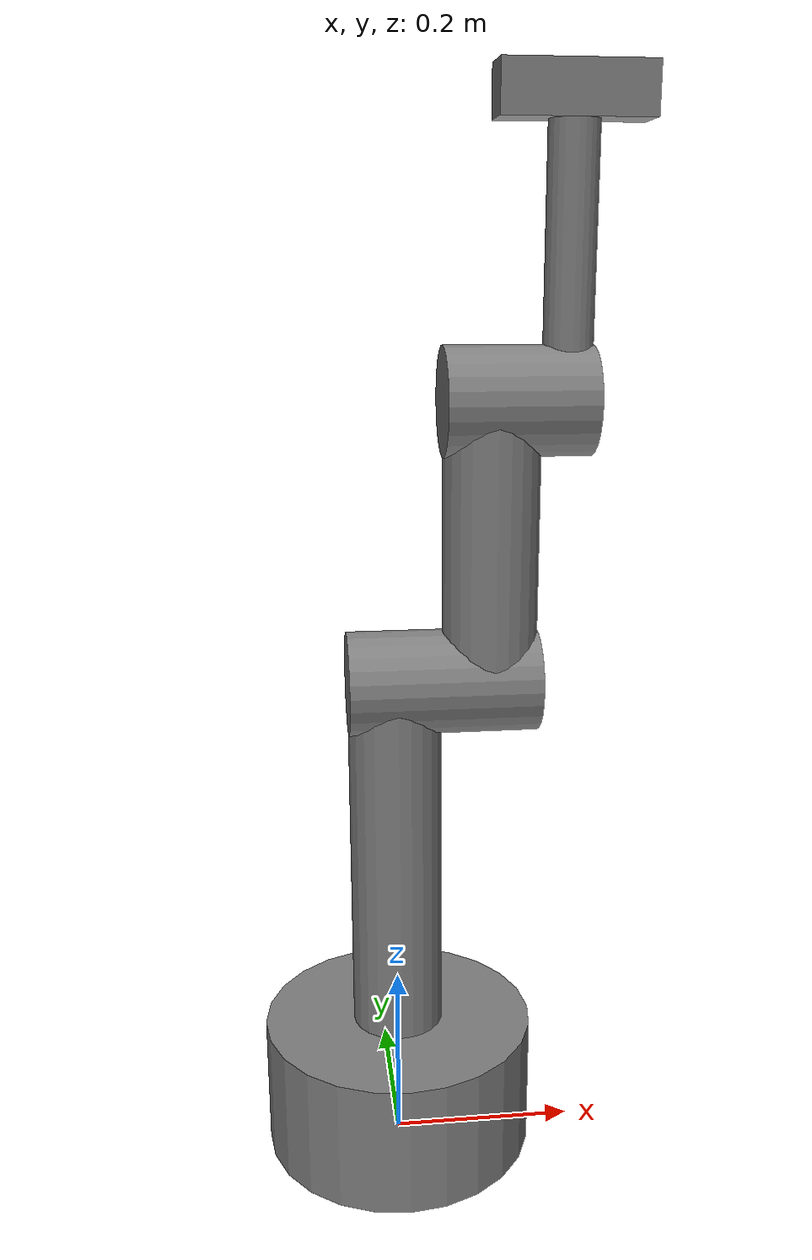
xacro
<?xml version="1.0"?>
<robot name="3dof" xmlns:xacro="http://ros.org/wiki/xacro">

    <!-- Define properties -->
    <xacro:property name="M_PI" value="3.14159"/>
    <xacro:property name="base_mass" value="20"/>
    <xacro:property name="base_radius" value="0.15"/>
    <xacro:property name="base_length" value="0.15"/>
    <xacro:property name="link1_mass" value="5"/>
    <xacro:property name="link1_radius" value="0.05"/>
    <xacro:property name="link1_length" value="0.4"/>

    <xacro:property name="link2_mass" value="2"/>
    <xacro:property name="link2_radius" value="0.05"/>
    <xacro:property name="link2_length" value="0.3"/>

    <xacro:property name="link3_mass" value="3"/>
    <xacro:property name="link3_radius" value="0.025"/>
    <xacro:property name="link3_length" value="0.3"/>

    <xacro:property name="link4_mass" value="1"/>
    <xacro:property name="link4_radius" value="0.025"/>
    <xacro:property name="link4_length" value="0.15"/>

    <!-- Define macro for inertial block -->
    <xacro:macro name="inertial_block" params="mass length radius">
        <inertial>
            <origin xyz="0 0 ${length/2}" rpy="0 0 0"/>
            <mass value="${mass}"/>
            <inertia
                ixx="${mass / 12.0 * (2*radius*2*radius + length*length)}" ixy="0.0" ixz="0.0"
                iyy="${mass / 12.0 * (length*length + 2*radius*2*radius)}" iyz="0.0"
                izz="${mass / 12.0 * (2*radius*2*radius + 2*radius*2*radius)}" />
        </inertial>
    </xacro:macro>

    <!-- Define macro for visual block -->
    <xacro:macro name="visual_block" params="radius length color">
        <visual>
            <origin xyz="0 0 ${length/2}" rpy="0 0 0"/>
            <geometry>
                <cylinder radius="${radius}" length="${length}"/>
            </geometry>
            <material name="grey">
                <color rgba="${color}"/>
            </material>
        </visual>
    </xacro:macro>

    <!-- Define macro for collision block -->
    <xacro:macro name="collision_block" params="radius length">
        <collision>
            <origin xyz="0 0 ${length/2}" rpy="0 0 0"/>
            <geometry>
                <cylinder radius="${radius}" length="${length}"/>
            </geometry>
        </collision>
    </xacro:macro>

    <!-- Mundo (World) -->
    <link name="world"/>
    <joint name="world_joint" type="fixed">
        <origin rpy="0.0 0.0 0.0" xyz="0.0 0.0 0.0"/>
        <parent link="world"/>
        <child link="base_link"/>
    </joint>

    <!-- Base Link -->
    <link name="base_link">
        <xacro:inertial_block mass="${base_mass}" length="${base_length}" radius="${base_radius}"/>
        <xacro:visual_block radius="${base_radius}" length="${base_length}" color="0.5 0.5 0.5 1"/>
        <xacro:collision_block radius="${base_radius}" length="${base_length}"/>
    </link>

    <joint name="joint_1" type="revolute">
        <origin xyz="0.0 0.0 ${base_length}" rpy="0.0 0.0 0.0" />
        <parent link="base_link"/>
        <child link="link_1"/>
        <axis xyz="0.0 0.0 1"/>
        <limit effort="300.0" lower="0.0" upper="6.28318" velocity="1.0"/>
    </joint>

    <!-- Link 1 -->
    <link name="link_1">
        <xacro:inertial_block mass="${link1_mass}" length="${link1_length}" radius="${link1_radius}"/>
        <xacro:visual_block radius="${link1_radius}" length="${link1_length}" color="0.5 0.5 0.5 1"/>
        <xacro:collision_block radius="${link1_radius}" length="${link1_length}"/>
    </link>

    <!-- Codo -->
    <link name="link_1_endlink">
        <xacro:inertial_block mass="${link1_mass/3.0}" length="${2*link1_radius+2*link2_radius}" radius="${link1_radius}"/>
        <visual>
            <origin xyz="0.0 0.0 ${(2*link1_radius+2*link2_radius)/2.0}" rpy="0.0 0.0 0.0"/>
            <geometry>
                <cylinder length="${(2*link1_radius+2*link2_radius)}" radius="${link1_radius*1.1}"/>
            </geometry>
            <material name="grey">
                <color rgba="0.5 0.5 0.5 1"/>
            </material>
        </visual>
        <collision>
            <origin xyz="0.0 0.0 ${(2*link1_radius+2*link2_radius)/2.0}" rpy="0.0 0.0 0.0"/>
            <geometry>
                <cylinder length="${(2*link1_radius+2*link2_radius)}" radius="${link1_radius*1.1}"/>
            </geometry>
        </collision>
    </link>

    <!-- Articulacion codo -->
    <joint name="link_1_endjoint" type="fixed">
        <origin xyz="${-link1_radius} 0.0 ${link1_length}" rpy="0.0 ${M_PI/2.0} 0.0"/>
        <parent link="link_1"/>
        <child link="link_1_endlink"/>
    </joint>

    <joint name="joint_2" type="revolute">
        <origin xyz="${link1_radius + link2_radius} 0.0 ${link1_length}" rpy="0.0 0.0 0.0"/>
        <parent link="link_1"/>
        <child link="link_2"/>
        <axis xyz="1.0 0.0 0.0"/>
        <limit effort="300.0" lower="0.0" upper="${M_PI}" velocity="1.0"/>
    </joint>

    <!-- Link 2 -->
    <link name="link_2">
        <xacro:inertial_block mass="${link2_mass}" length="${link2_length}" radius="${link2_radius}"/>
        <xacro:visual_block radius="${link2_radius}" length="${link2_length}" color="0.5 0.5 0.5 1"/>
        <xacro:collision_block radius="${link2_radius}" length="${link2_length}"/>
    </link>

    <!-- Link 2 end link -->
    <link name="link_2_endlink">
        <xacro:inertial_block mass="${link3_mass/3.0}" length="${2*link2_radius+2*link3_radius}" radius="${link2_radius}"/>
        <visual>
            <origin xyz="0.0 0.0 ${(2*link2_radius+2*link3_radius)/2.0}" rpy="0.0 0.0 0.0"/>
            <geometry>
                <cylinder radius="${link2_radius*1.1}" length="${2*link2_radius+2*link3_radius}"/>
            </geometry>
            <material name="grey">
                <color rgba="0.5 0.5 0.5 1"/>
            </material>
        </visual>
        <collision>
            <origin xyz="0.0 0.0 ${(2*link2_radius+2*link3_radius)/2.0}" rpy="0.0 0.0 0.0"/>
            <geometry>
                <cylinder radius="${link2_radius*1.1}" length="${2*link2_radius+2*link3_radius}"/>
            </geometry>
        </collision>
    </link>

    <joint name="link_2_endjoint" type="fixed">
        <origin xyz="${-link2_radius} 0.0 ${link2_length - 0.01}" rpy="0.0 ${M_PI/2.0} 0.0"/>
        <parent link="link_2"/>
        <child link="link_2_endlink"/>
    </joint>

    <joint name="joint_3" type="revolute">
        <origin xyz="${link2_radius + link3_radius} 0.0 ${link2_length - link2_radius}" rpy="0.0 0.0 0.0"/>
        <parent link="link_2"/>
        <child link="link_3"/>
        <axis xyz="1.0 0.0 0.0"/>
        <limit lower="0.0" upper="${M_PI * 2}" effort="300.0" velocity="1.0"/>
    </joint>

    <!-- Link 3 -->
    <link name="link_3">
        <xacro:inertial_block mass="${link3_mass}" length="${link3_length}" radius="${link3_radius}"/>
        <xacro:visual_block radius="${link3_radius}" length="${link3_length}" color="0.5 0.5 0.5 1"/>
        <xacro:collision_block radius="${link3_radius}" length="${link3_length}"/>
    </link>

    <!-- Mano efector final -->
    <joint name="joint_4" type="fixed">
        <origin xyz="0.0 0.0 ${link3_length}" rpy="0.0 0.0 0.0"/>
        <parent link="link_3"/>
        <child link="link_4"/>
        <axis xyz="0.0 0.0 1.0"/>
    </joint>

    <!-- Link 4 -->
    <link name="link_4">
        <xacro:inertial_block mass="${link4_mass}" length="${link4_length}" radius="${link4_radius}"/>
        <visual>
            <origin xyz="0.0 0.0 ${link4_radius}" rpy="0.0 ${M_PI/2.0} 0.0"/>
            <geometry>
                <box size="${link4_radius*2} ${link4_radius*2} ${link4_length}"/>
            </geometry>
            <material name="grey">
                <color rgba="0.5 0.5 0.5 1"/>
            </material>
        </visual>
        <collision>
            <origin xyz="0.0 0.0 ${link4_radius}" rpy="0.0 ${M_PI/2.0} 0.0"/>
            <geometry>
                <box size="${link4_radius*2} ${link4_radius*2} ${link4_length}"/>
            </geometry>
        </collision>
    </link>

		<ros2_control name="GazeboSystem" type="system">
			<hardware>
				<plugin>gazebo_ros2_control/GazeboSystem</plugin>
	    	</hardware>

	    	<joint name="joint_1">
	    		<command_interface name="position">
	    			<param name="min">-6.2832</param>
	    			<param name="max">6.2832</param>
	    		</command_interface>
	    		<state_interface name="position"/>
	    		<state_interface name="velocity"/>
	    		<state_interface name="effort"/>
	    	</joint>

	    	<joint name="joint_2">
	    		<command_interface name="position">
	    			<param name="min">-6.2832</param>
	    			<param name="max">6.2832</param>
	    		</command_interface>
	    		<state_interface name="position"/>
	    		<state_interface name="velocity"/>
	    		<state_interface name="effort"/>
	    	</joint>

	    	<joint name="joint_3">
	    		<command_interface name="position">
	    			<param name="min">-2.7925</param>
	    			<param name="max">2.7925</param>
	    		</command_interface>
	    		<state_interface name="position"/>
	    		<state_interface name="velocity"/>
	    		<state_interface name="effort"/>
	    	</joint>
	  	</ros2_control>

    <gazebo>
        <plugin name="gazebo_ros2_control" filename="libgazebo_ros2_control.so">
            <robot_sim_type>gazebo_ros2_control/GazeboSystem</robot_sim_type>
            <parameters>/home/edu/Documentos/universidad/ros/ros2_ws/src/3dof/config/joint_controller.yaml</parameters>
        </plugin>
    </gazebo>
</robot>
